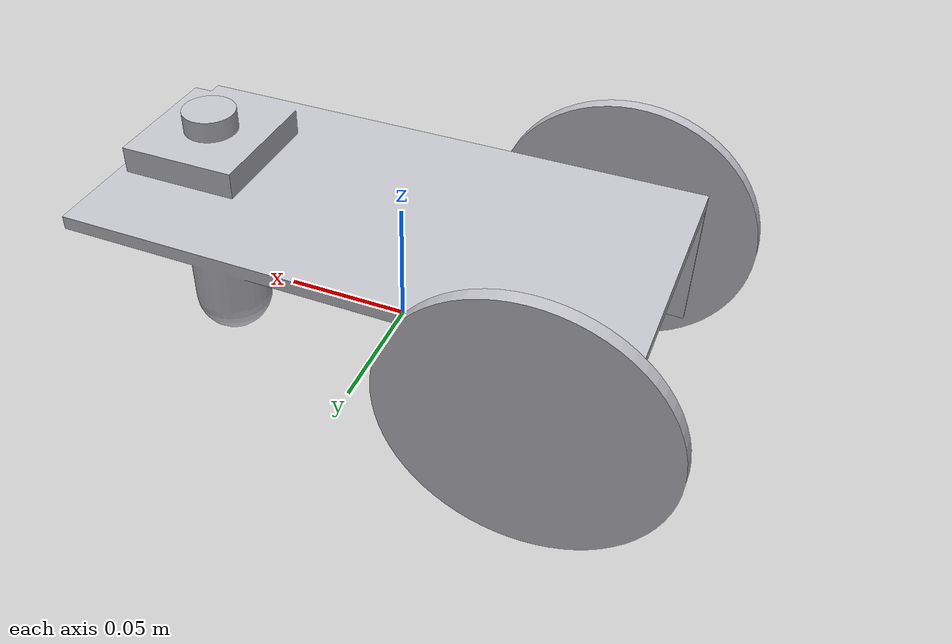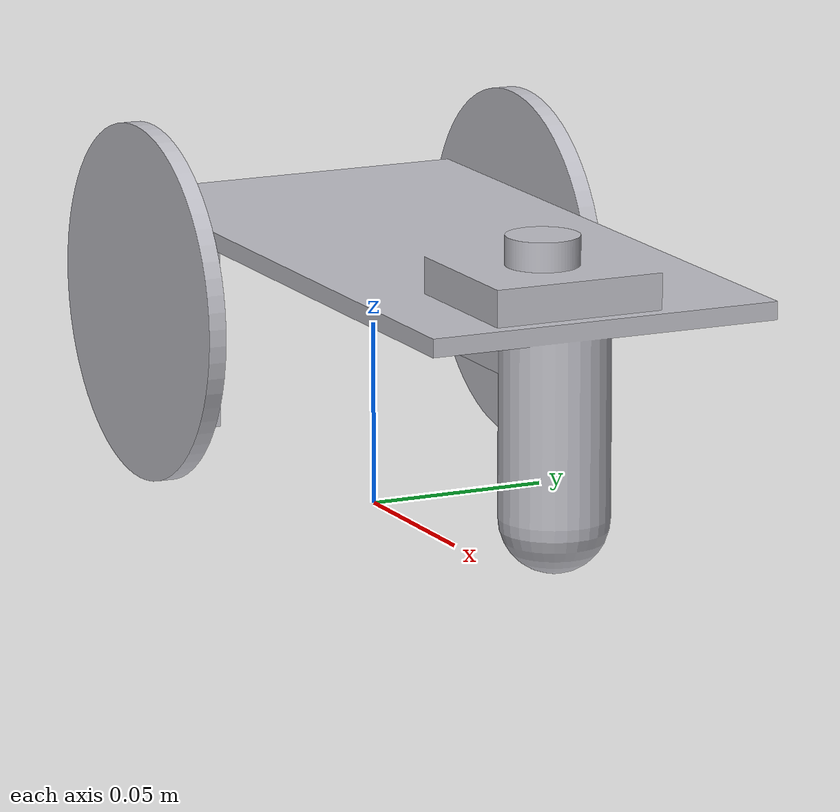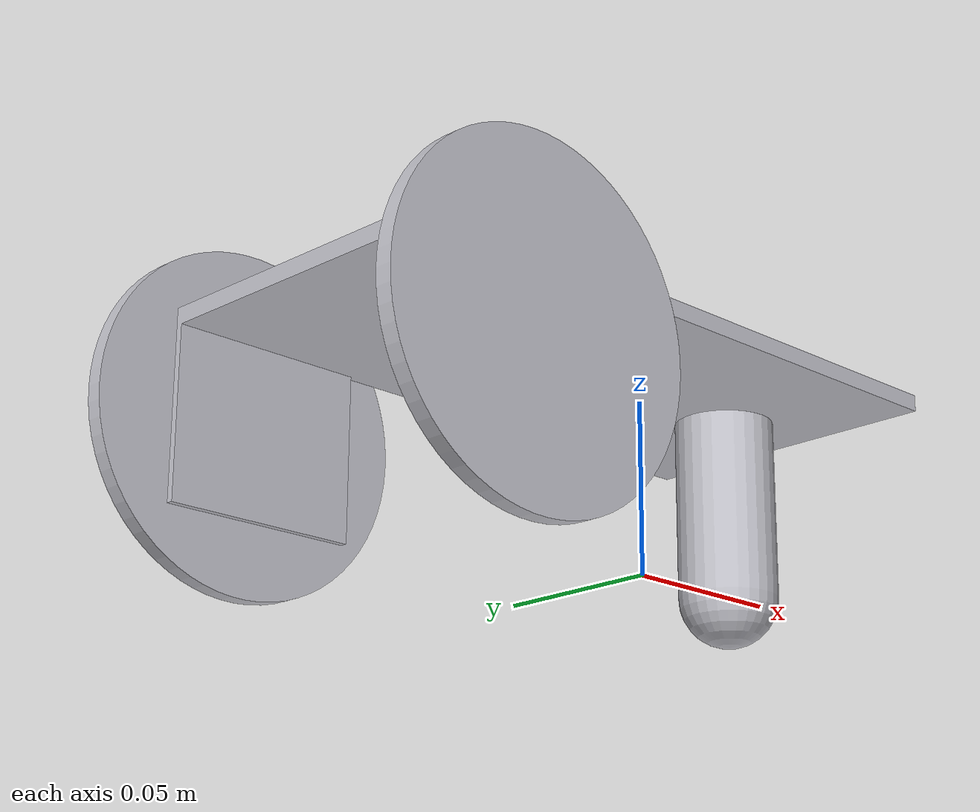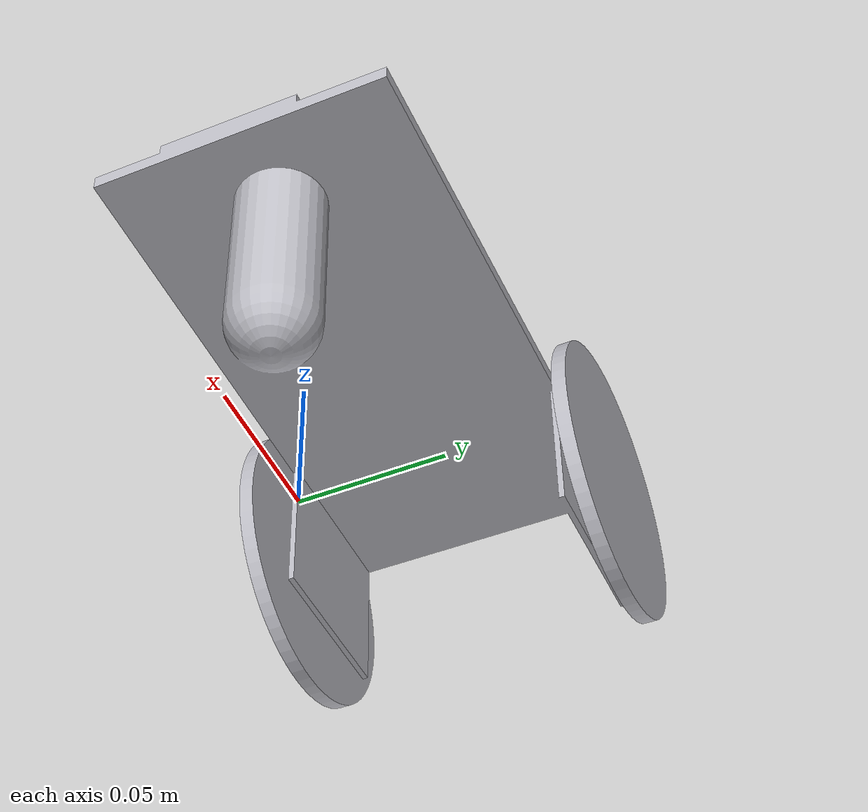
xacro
<?xml version="1.0" ?>
<robot name="cart" xmlns:xacro="http://www.ros.org/wiki/xacro">

<xacro:include filename="$(find cart_description)/urdf/materials.xacro" />
<xacro:include filename="$(find cart_description)/urdf/cart.trans" />
<xacro:include filename="$(find cart_description)/urdf/cart.gazebo" />
<link name="base_link">
  <inertial>
    <origin xyz="0.11272781043106934 0.0588118084332541 0.0654304609107374" rpy="0 0 0"/>
    <mass value="1.4293825523394872"/>
    <inertia ixx="0.001546" iyy="0.005883" izz="0.006346" ixy="5.3e-05" iyz="1.7e-05" ixz="0.000274"/>
  </inertial>
  <visual>
    <origin xyz="0 0 0" rpy="0 0 0"/>
    <geometry>
      <mesh filename="package://cart_description/meshes/base_link.stl" scale="0.001 0.001 0.001"/>
    </geometry>
    <material name="silver"/>
  </visual>
  <collision>
    <origin xyz="0 0 0" rpy="0 0 0"/>
    <geometry>
      <mesh filename="package://cart_description/meshes/base_link.stl" scale="0.001 0.001 0.001"/>
    </geometry>
  </collision>
</link>

<link name="wheel__1_1">
  <inertial>
    <origin xyz="-1.4137563035532263e-07 -0.0025002715098941873 -2.007497833592109e-07" rpy="0 0 0"/>
    <mass value="0.30826877913349837"/>
    <inertia ixx="0.000193" iyy="0.000385" izz="0.000193" ixy="0.0" iyz="-0.0" ixz="0.0"/>
  </inertial>
  <visual>
    <origin xyz="-0.022418 -0.004497 -0.053122" rpy="0 0 0"/>
    <geometry>
      <mesh filename="package://cart_description/meshes/wheel__1_1.stl" scale="0.001 0.001 0.001"/>
    </geometry>
    <material name="silver"/>
  </visual>
  <collision>
    <origin xyz="-0.022418 -0.004497 -0.053122" rpy="0 0 0"/>
    <geometry>
      <mesh filename="package://cart_description/meshes/wheel__1_1.stl" scale="0.001 0.001 0.001"/>
    </geometry>
  </collision>
</link>

<link name="wheel_2_1">
  <inertial>
    <origin xyz="-1.4137562678179227e-07 0.0024997284901030342 -2.007497835812555e-07" rpy="0 0 0"/>
    <mass value="0.30826877913349837"/>
    <inertia ixx="0.000193" iyy="0.000385" izz="0.000193" ixy="0.0" iyz="-0.0" ixz="0.0"/>
  </inertial>
  <visual>
    <origin xyz="-0.022418 -0.114497 -0.053122" rpy="0 0 0"/>
    <geometry>
      <mesh filename="package://cart_description/meshes/wheel_2_1.stl" scale="0.001 0.001 0.001"/>
    </geometry>
    <material name="silver"/>
  </visual>
  <collision>
    <origin xyz="-0.022418 -0.114497 -0.053122" rpy="0 0 0"/>
    <geometry>
      <mesh filename="package://cart_description/meshes/wheel_2_1.stl" scale="0.001 0.001 0.001"/>
    </geometry>
  </collision>
</link>

<link name="revert_1_1">
  <inertial>
    <origin xyz="9.42674546755562e-08 -2.0447639249160376e-07 0.003999799250215735" rpy="0 0 0"/>
    <mass value="0.01972920186454389"/>
    <inertia ixx="1e-06" iyy="1e-06" izz="1e-06" ixy="0.0" iyz="-0.0" ixz="0.0"/>
  </inertial>
  <visual>
    <origin xyz="-0.166583 -0.053558 -0.088122" rpy="0 0 0"/>
    <geometry>
      <mesh filename="package://cart_description/meshes/revert_1_1.stl" scale="0.001 0.001 0.001"/>
    </geometry>
    <material name="silver"/>
  </visual>
  <collision>
    <origin xyz="-0.166583 -0.053558 -0.088122" rpy="0 0 0"/>
    <geometry>
      <mesh filename="package://cart_description/meshes/revert_1_1.stl" scale="0.001 0.001 0.001"/>
    </geometry>
  </collision>
</link>

<joint name="Rev1" type="continuous">
  <origin xyz="0.022418 0.004497 0.053122" rpy="0 0 0"/>
  <parent link="base_link"/>
  <child link="wheel__1_1"/>
  <axis xyz="0.0 1.0 0.0"/>
</joint>

<joint name="Rev2" type="continuous">
  <origin xyz="0.022418 0.114497 0.053122" rpy="0 0 0"/>
  <parent link="base_link"/>
  <child link="wheel_2_1"/>
  <axis xyz="0.0 1.0 0.0"/>
</joint>

<joint name="Rev3" type="continuous">
  <origin xyz="0.166583 0.053558 0.088122" rpy="0 0 0"/>
  <parent link="base_link"/>
  <child link="revert_1_1"/>
  <axis xyz="0.0 0.0 1.0"/>
</joint>

</robot>

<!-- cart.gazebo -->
<robot name="cart" xmlns:xacro="http://www.ros.org/wiki/xacro" >

<xacro:property name="body_color" value="Gazebo/Silver" />

<gazebo>
  <plugin name="control" filename="libgazebo_ros_control.so"/>
</gazebo>
<gazebo reference="base_link">
  <material>${body_color}</material>
  <mu1>3500</mu1>
  <mu2>3500</mu2>
  <selfCollide>true</selfCollide>
  <gravity>true</gravity>
</gazebo>

<gazebo reference="wheel__1_1">
  <material>${body_color}</material>
  <mu1>3500</mu1>
  <mu2>3500</mu2>
  <selfCollide>true</selfCollide>
</gazebo>

<gazebo reference="wheel_2_1">
  <material>${body_color}</material>
  <mu1>3500</mu1>
  <mu2>3500</mu2>
  <selfCollide>true</selfCollide>
</gazebo>

<gazebo reference="revert_1_1">
  <material>${body_color}</material>
  <mu1>3500</mu1>
  <mu2>3500</mu2>
  <selfCollide>true</selfCollide>
</gazebo>
  <gazebo>
  <plugin name="differential_drive_controller" filename="libgazebo_ros_diff_drive.so">

    <!-- Plugin update rate in Hz -->
    <updateRate>${1000}</updateRate>

    <!-- Name of left joint, defaults to `left_joint` -->
    <leftJoint>Rev2</leftJoint>

    <!-- Name of right joint, defaults to `right_joint` -->
    <rightJoint>Rev1</rightJoint>

    <!-- The distance from the center of one wheel to the other, in meters, defaults to 0.34 m -->
    <wheelSeparation>0.5380</wheelSeparation>

    <!-- Diameter of the wheels, in meters, defaults to 0.15 m -->
    <wheelDiameter>0.2410</wheelDiameter>

    <!-- Wheel acceleration, in rad/s^2, defaults to 0.0 rad/s^2 -->
    <wheelAcceleration>1.0</wheelAcceleration>

    <!-- Maximum torque which the wheels can produce, in Nm, defaults to 5 Nm -->
    <wheelTorque>20</wheelTorque>

    <!-- Topic to receive geometry_msgs/Twist message commands, defaults to `cmd_vel` -->
    <commandTopic>cmd_vel</commandTopic>

    <!-- Topic to publish nav_msgs/Odometry messages, defaults to `odom` -->
    <odometryTopic>odom</odometryTopic>

    <!-- Odometry frame, defaults to `odom` -->
    <odometryFrame>odom</odometryFrame>

    <!-- Robot frame to calculate odometry from, defaults to `base_footprint` -->
    <robotBaseFrame>base_link</robotBaseFrame>

    <!-- Odometry source, 0 for ENCODER, 1 for WORLD, defaults to WORLD -->
    <odometrySource>1</odometrySource>

    <!-- Set to true to publish transforms for the wheel links, defaults to false -->
    <publishWheelTF>true</publishWheelTF>

    <!-- Set to true to publish transforms for the odometry, defaults to true -->
    <publishOdom>true</publishOdom>

    <!-- Set to true to publish sensor_msgs/JointState on /joint_states for the wheel joints, defaults to false -->
    <publishWheelJointState>true</publishWheelJointState>

    <!-- Set to true to swap right and left wheels, defaults to true -->
    <legacyMode>false</legacyMode>
  </plugin>
</gazebo>

</robot>
